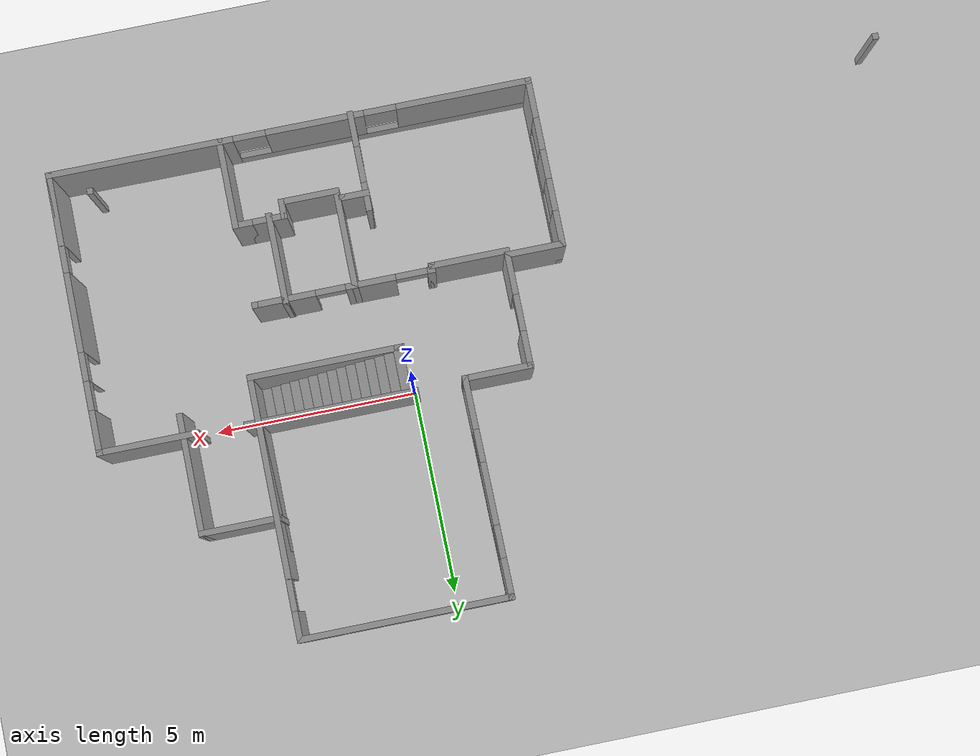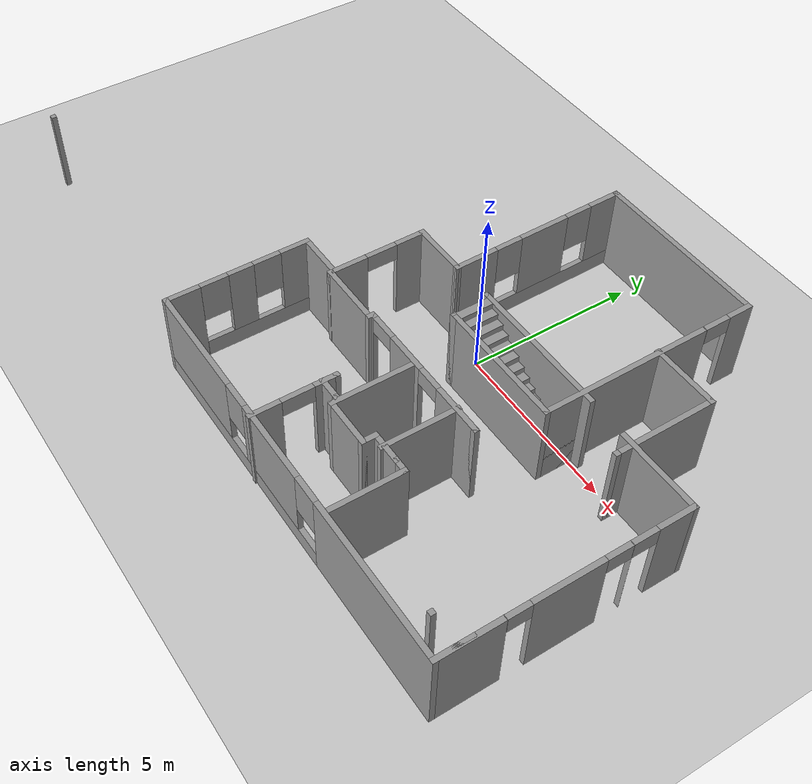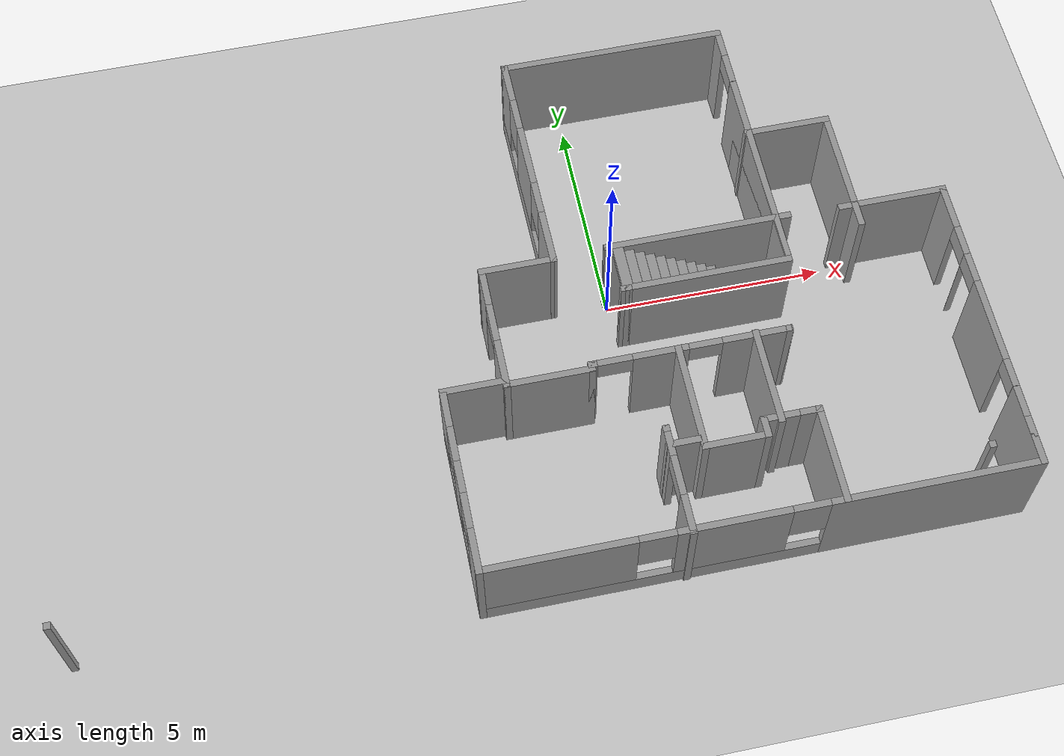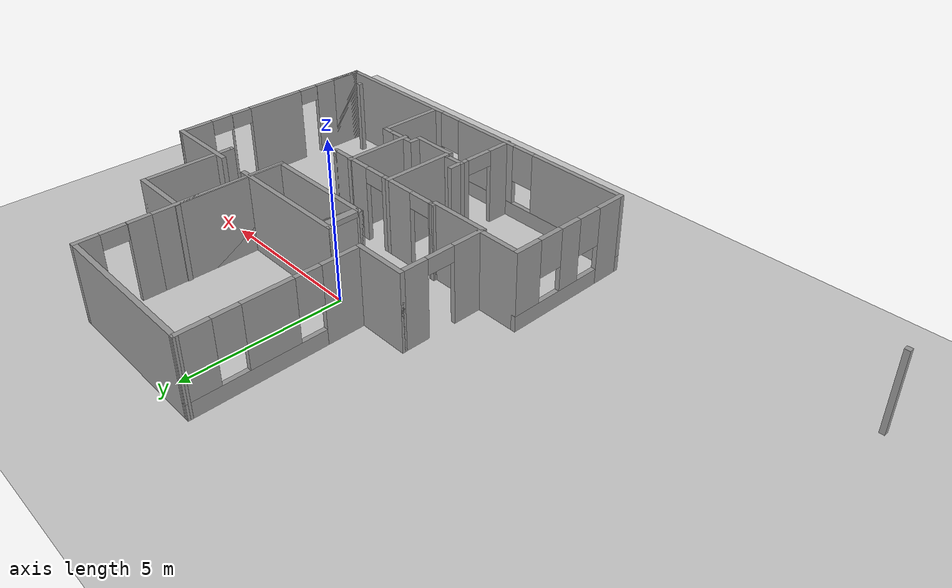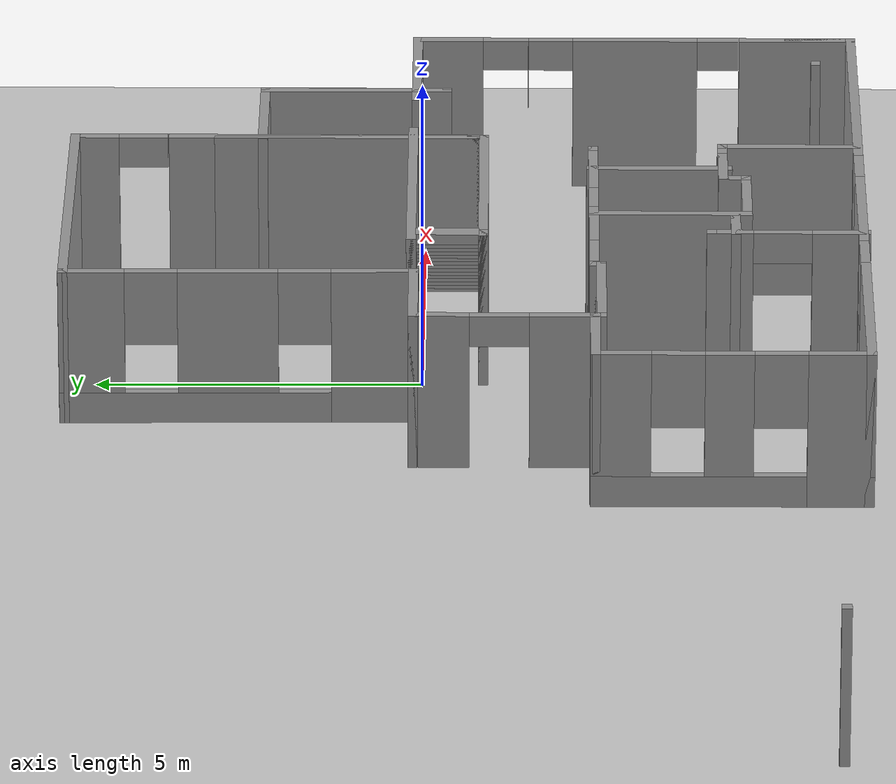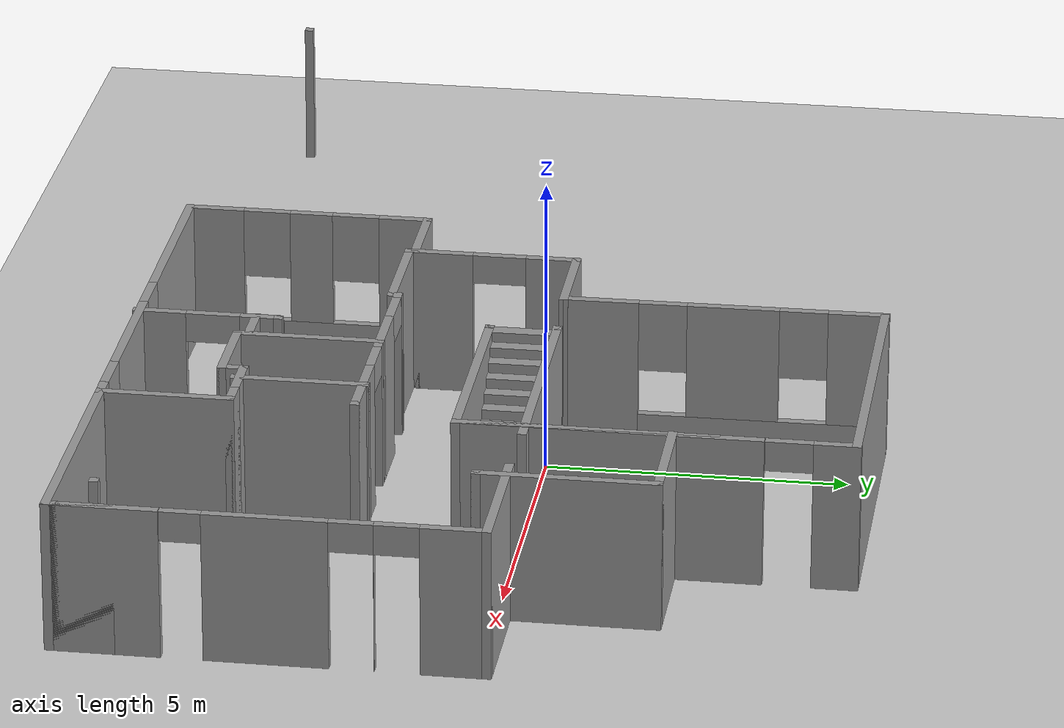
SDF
<sdf version="1.7">
 <world name="default">
  <light name="sun" type="directional">
   <pose>0 0 10 0 -0 0</pose>
   <diffuse>0.8 0.8 0.8 1</diffuse>
   <specular>0.2 0.2 0.2 1</specular>
   <attenuation>
    <range>1000</range>
    <constant>0.9</constant>
    <linear>0.01</linear>
    <quadratic>0.001</quadratic>
   </attenuation>
   <direction>-0.5 0.1 -0.9</direction>
   <spot><inner_angle>0</inner_angle><outer_angle>0</outer_angle><falloff>0</falloff></spot>
  </light>
  <model name="ground_plane">
   <static>1</static>
   <link name="link">
    <collision name="collision">
     <geometry><plane><normal>0 0 1</normal><size>100 100</size></plane></geometry>
     <surface>
      <contact><collide_bitmask>65535</collide_bitmask></contact>
      <friction><ode><mu>100</mu><mu2>50</mu2></ode></friction>
     </surface>
    </collision>
    <visual name="visual">
     <cast_shadows>0</cast_shadows>
     <geometry><plane><normal>0 0 1</normal><size>100 100</size></plane></geometry>
     <material>
      <script><uri>file://media/materials/scripts/gazebo.material</uri><name>Gazebo/Grey</name></script>
     </material>
    </visual>
   </link>
  </model>
  <gravity>0 0 -9.8</gravity>
  <magnetic_field>6e-06 2.3e-05 -4.2e-05</magnetic_field>
  <atmosphere type="adiabatic"/>
  <physics type="ode">
   <max_step_size>0.001</max_step_size>
   <real_time_factor>1</real_time_factor>
   <real_time_update_rate>1000</real_time_update_rate>
  </physics>
  <scene><ambient>0.4 0.4 0.4 1</ambient><background>0.7 0.7 0.7 1</background><shadows>1</shadows></scene>
  <spherical_coordinates>
   <surface_model>EARTH_WGS84</surface_model>
   <latitude_deg>0</latitude_deg>
   <longitude_deg>0</longitude_deg>
   <elevation>0</elevation>
   <heading_deg>0</heading_deg>
  </spherical_coordinates>
  <model name="Floorplan3">
   <pose>-2.52848 -0.65485 0 0 -0 0</pose>
   <link name="Stairs_0">
    <visual name="Stairs_0_Visual_0">
     <pose>6.12924 0.284508 0.083333 0 -0 -1.5708</pose>
     <geometry><box><size>0.964509 0.243192 0.166667</size></box></geometry>
     <material>
      <script><uri>file://media/materials/scripts/gazebo.material</uri><name>Gazebo/Grey</name></script>
      <ambient>1 1 1 1</ambient>
     </material>
     <meta><layer>0</layer></meta>
    </visual>
    <collision name="Stairs_0_Collision_0">
     <geometry><box><size>0.964509 0.243192 0.166667</size></box></geometry>
     <pose>6.12924 0.284508 0.083333 0 -0 -1.5708</pose>
    </collision>
    <visual name="Stairs_0_Visual_1">
     <pose>5.88604 0.284508 0.25 0 -0 -1.5708</pose>
     <geometry><box><size>0.964509 0.243192 0.166667</size></box></geometry>
     <material>
      <script><uri>file://media/materials/scripts/gazebo.material</uri><name>Gazebo/Grey</name></script>
      <ambient>1 1 1 1</ambient>
     </material>
     <meta><layer>0</layer></meta>
    </visual>
    <collision name="Stairs_0_Collision_1">
     <geometry><box><size>0.964509 0.243192 0.166667</size></box></geometry>
     <pose>5.88604 0.284508 0.25 0 -0 -1.5708</pose>
    </collision>
    <visual name="Stairs_0_Visual_2">
     <pose>5.64285 0.284508 0.416667 0 -0 -1.5708</pose>
     <geometry><box><size>0.964509 0.243192 0.166667</size></box></geometry>
     <material>
      <script><uri>file://media/materials/scripts/gazebo.material</uri><name>Gazebo/Grey</name></script>
      <ambient>1 1 1 1</ambient>
     </material>
     <meta><layer>0</layer></meta>
    </visual>
    <collision name="Stairs_0_Collision_2">
     <geometry><box><size>0.964509 0.243192 0.166667</size></box></geometry>
     <pose>5.64285 0.284508 0.416667 0 -0 -1.5708</pose>
    </collision>
    <visual name="Stairs_0_Visual_3">
     <pose>5.39966 0.284508 0.583333 0 -0 -1.5708</pose>
     <geometry><box><size>0.964509 0.243192 0.166667</size></box></geometry>
     <material>
      <script><uri>file://media/materials/scripts/gazebo.material</uri><name>Gazebo/Grey</name></script>
      <ambient>1 1 1 1</ambient>
     </material>
     <meta><layer>0</layer></meta>
    </visual>
    <collision name="Stairs_0_Collision_3">
     <geometry><box><size>0.964509 0.243192 0.166667</size></box></geometry>
     <pose>5.39966 0.284508 0.583333 0 -0 -1.5708</pose>
    </collision>
    <visual name="Stairs_0_Visual_4">
     <pose>5.15647 0.284508 0.75 0 -0 -1.5708</pose>
     <geometry><box><size>0.964509 0.243192 0.166667</size></box></geometry>
     <material>
      <script><uri>file://media/materials/scripts/gazebo.material</uri><name>Gazebo/Grey</name></script>
      <ambient>1 1 1 1</ambient>
     </material>
     <meta><layer>0</layer></meta>
    </visual>
    <collision name="Stairs_0_Collision_4">
     <geometry><box><size>0.964509 0.243192 0.166667</size></box></geometry>
     <pose>5.15647 0.284508 0.75 0 -0 -1.5708</pose>
    </collision>
    <visual name="Stairs_0_Visual_5">
     <pose>4.91327 0.284508 0.916667 0 -0 -1.5708</pose>
     <geometry><box><size>0.964509 0.243192 0.166667</size></box></geometry>
     <material>
      <script><uri>file://media/materials/scripts/gazebo.material</uri><name>Gazebo/Grey</name></script>
      <ambient>1 1 1 1</ambient>
     </material>
     <meta><layer>0</layer></meta>
    </visual>
    <collision name="Stairs_0_Collision_5">
     <geometry><box><size>0.964509 0.243192 0.166667</size></box></geometry>
     <pose>4.91327 0.284508 0.916667 0 -0 -1.5708</pose>
    </collision>
    <visual name="Stairs_0_Visual_6">
     <pose>4.67008 0.284508 1.08333 0 -0 -1.5708</pose>
     <geometry><box><size>0.964509 0.243192 0.166667</size></box></geometry>
     <material>
      <script><uri>file://media/materials/scripts/gazebo.material</uri><name>Gazebo/Grey</name></script>
      <ambient>1 1 1 1</ambient>
     </material>
     <meta><layer>0</layer></meta>
    </visual>
    <collision name="Stairs_0_Collision_6">
     <geometry><box><size>0.964509 0.243192 0.166667</size></box></geometry>
     <pose>4.67008 0.284508 1.08333 0 -0 -1.5708</pose>
    </collision>
    <visual name="Stairs_0_Visual_7">
     <pose>4.42689 0.284508 1.25 0 -0 -1.5708</pose>
     <geometry><box><size>0.964509 0.243192 0.166667</size></box></geometry>
     <material>
      <script><uri>file://media/materials/scripts/gazebo.material</uri><name>Gazebo/Grey</name></script>
      <ambient>1 1 1 1</ambient>
     </material>
     <meta><layer>0</layer></meta>
    </visual>
    <collision name="Stairs_0_Collision_7">
     <geometry><box><size>0.964509 0.243192 0.166667</size></box></geometry>
     <pose>4.42689 0.284508 1.25 0 -0 -1.5708</pose>
    </collision>
    <visual name="Stairs_0_Visual_8">
     <pose>4.1837 0.284508 1.41667 0 -0 -1.5708</pose>
     <geometry><box><size>0.964509 0.243192 0.166667</size></box></geometry>
     <material>
      <script><uri>file://media/materials/scripts/gazebo.material</uri><name>Gazebo/Grey</name></script>
      <ambient>1 1 1 1</ambient>
     </material>
     <meta><layer>0</layer></meta>
    </visual>
    <collision name="Stairs_0_Collision_8">
     <geometry><box><size>0.964509 0.243192 0.166667</size></box></geometry>
     <pose>4.1837 0.284508 1.41667 0 -0 -1.5708</pose>
    </collision>
    <visual name="Stairs_0_Visual_9">
     <pose>3.94051 0.284508 1.58333 0 -0 -1.5708</pose>
     <geometry><box><size>0.964509 0.243192 0.166667</size></box></geometry>
     <material>
      <script><uri>file://media/materials/scripts/gazebo.material</uri><name>Gazebo/Grey</name></script>
      <ambient>1 1 1 1</ambient>
     </material>
     <meta><layer>0</layer></meta>
    </visual>
    <collision name="Stairs_0_Collision_9">
     <geometry><box><size>0.964509 0.243192 0.166667</size></box></geometry>
     <pose>3.94051 0.284508 1.58333 0 -0 -1.5708</pose>
    </collision>
    <visual name="Stairs_0_Visual_10">
     <pose>3.69732 0.284508 1.75 0 -0 -1.5708</pose>
     <geometry><box><size>0.964509 0.243192 0.166667</size></box></geometry>
     <material>
      <script><uri>file://media/materials/scripts/gazebo.material</uri><name>Gazebo/Grey</name></script>
      <ambient>1 1 1 1</ambient>
     </material>
     <meta><layer>0</layer></meta>
    </visual>
    <collision name="Stairs_0_Collision_10">
     <geometry><box><size>0.964509 0.243192 0.166667</size></box></geometry>
     <pose>3.69732 0.284508 1.75 0 -0 -1.5708</pose>
    </collision>
    <visual name="Stairs_0_Visual_11">
     <pose>3.45412 0.284508 1.91667 0 -0 -1.5708</pose>
     <geometry><box><size>0.964509 0.243192 0.166667</size></box></geometry>
     <material>
      <script><uri>file://media/materials/scripts/gazebo.material</uri><name>Gazebo/Grey</name></script>
      <ambient>1 1 1 1</ambient>
     </material>
     <meta><layer>0</layer></meta>
    </visual>
    <collision name="Stairs_0_Collision_11">
     <geometry><box><size>0.964509 0.243192 0.166667</size></box></geometry>
     <pose>3.45412 0.284508 1.91667 0 -0 -1.5708</pose>
    </collision>
    <visual name="Stairs_0_Visual_12">
     <pose>3.21093 0.284508 2.08333 0 -0 -1.5708</pose>
     <geometry><box><size>0.964509 0.243192 0.166667</size></box></geometry>
     <material>
      <script><uri>file://media/materials/scripts/gazebo.material</uri><name>Gazebo/Grey</name></script>
      <ambient>1 1 1 1</ambient>
     </material>
     <meta><layer>0</layer></meta>
    </visual>
    <collision name="Stairs_0_Collision_12">
     <geometry><box><size>0.964509 0.243192 0.166667</size></box></geometry>
     <pose>3.21093 0.284508 2.08333 0 -0 -1.5708</pose>
    </collision>
    <visual name="Stairs_0_Visual_13">
     <pose>2.96774 0.284508 2.25 0 -0 -1.5708</pose>
     <geometry><box><size>0.964509 0.243192 0.166667</size></box></geometry>
     <material>
      <script><uri>file://media/materials/scripts/gazebo.material</uri><name>Gazebo/Grey</name></script>
      <ambient>1 1 1 1</ambient>
     </material>
     <meta><layer>0</layer></meta>
    </visual>
    <collision name="Stairs_0_Collision_13">
     <geometry><box><size>0.964509 0.243192 0.166667</size></box></geometry>
     <pose>2.96774 0.284508 2.25 0 -0 -1.5708</pose>
    </collision>
    <visual name="Stairs_0_Visual_14">
     <pose>2.72455 0.284508 2.41667 0 -0 -1.5708</pose>
     <geometry><box><size>0.964509 0.243192 0.166667</size></box></geometry>
     <material>
      <script><uri>file://media/materials/scripts/gazebo.material</uri><name>Gazebo/Grey</name></script>
      <ambient>1 1 1 1</ambient>
     </material>
     <meta><layer>0</layer></meta>
    </visual>
    <collision name="Stairs_0_Collision_14">
     <geometry><box><size>0.964509 0.243192 0.166667</size></box></geometry>
     <pose>2.72455 0.284508 2.41667 0 -0 -1.5708</pose>
    </collision>
   </link>
   <link name="Wall_0">
    <collision name="Wall_0_Collision">
     <geometry><box><size>5.25 0.15 2.5</size></box></geometry>
     <pose>0 0 1.25 0 -0 0</pose>
    </collision>
    <visual name="Wall_0_Visual">
     <pose>0 0 1.25 0 -0 0</pose>
     <geometry><box><size>5.25 0.15 2.5</size></box></geometry>
     <material>
      <script><uri>file://media/materials/scripts/gazebo.material</uri><name>Gazebo/Grey</name></script>
      <ambient>1 1 1 1</ambient>
     </material>
     <meta><layer>0</layer></meta>
    </visual>
    <pose>3.7815 6.08805 0 0 -0 0</pose>
   </link>
   <link name="Wall_1">
    <pose>6.3315 2.91305 0 0 -0 -1.5708</pose>
    <visual name="Wall_1_Visual_0">
     <pose>-2.87348 0 1.25 0 -0 0</pose>
     <geometry><box><size>0.753042 0.15 2.5</size></box></geometry>
     <material>
      <script><uri>file://media/materials/scripts/gazebo.material</uri><name>Gazebo/Grey</name></script>
      <ambient>1 1 1 1</ambient>
     </material>
     <meta><layer>0</layer></meta>
    </visual>
    <collision name="Wall_1_Collision_0">
     <geometry><box><size>0.753042 0.15 2.5</size></box></geometry>
     <pose>-2.87348 0 1.25 0 -0 0</pose>
    </collision>
    <visual name="Wall_1_Visual_1">
     <pose>0.764447 0 1.25 0 -0 0</pose>
     <geometry><box><size>4.9711 0.15 2.5</size></box></geometry>
     <material>
      <script><uri>file://media/materials/scripts/gazebo.material</uri><name>Gazebo/Grey</name></script>
      <ambient>1 1 1 1</ambient>
     </material>
     <meta><layer>0</layer></meta>
    </visual>
    <collision name="Wall_1_Collision_1">
     <geometry><box><size>4.9711 0.15 2.5</size></box></geometry>
     <pose>0.764447 0 1.25 0 -0 0</pose>
    </collision>
    <visual name="Wall_1_Visual_2">
     <pose>1.1182 0 1.25 0 -0 0</pose>
     <geometry><box><size>4.26359 0.15 2.5</size></box></geometry>
     <material>
      <script><uri>file://media/materials/scripts/gazebo.material</uri><name>Gazebo/Grey</name></script>
      <ambient>1 1 1 1</ambient>
     </material>
     <meta><layer>0</layer></meta>
    </visual>
    <collision name="Wall_1_Collision_2">
     <geometry><box><size>4.26359 0.15 2.5</size></box></geometry>
     <pose>1.1182 0 1.25 0 -0 0</pose>
    </collision>
    <visual name="Wall_1_Visual_3">
     <pose>-2.1148 0 2.25 0 -0 0</pose>
     <geometry><box><size>0.764314 0.15 0.5</size></box></geometry>
     <material>
      <script><uri>file://media/materials/scripts/gazebo.material</uri><name>Gazebo/Grey</name></script>
      <ambient>1 1 1 1</ambient>
     </material>
     <meta><layer>0</layer></meta>
    </visual>
    <collision name="Wall_1_Collision_3">
     <geometry><box><size>0.764314 0.15 0.5</size></box></geometry>
     <pose>-2.1148 0 2.25 0 -0 0</pose>
    </collision>
   </link>
   <link name="Wall_10">
    <pose>-1.66226 -4.00009 0 0 -0 1.5708</pose>
    <visual name="Wall_10_Visual_0">
     <pose>-1.61779 0 1.25 0 -0 0</pose>
     <geometry><box><size>1.01441 0.15 2.5</size></box></geometry>
     <material>
      <script><uri>file://media/materials/scripts/gazebo.material</uri><name>Gazebo/Grey</name></script>
      <ambient>1 1 1 1</ambient>
     </material>
     <meta><layer>0</layer></meta>
    </visual>
    <collision name="Wall_10_Collision_0">
     <geometry><box><size>1.01441 0.15 2.5</size></box></geometry>
     <pose>-1.61779 0 1.25 0 -0 0</pose>
    </collision>
    <visual name="Wall_10_Visual_1">
     <pose>0.507207 0 0.25 0 -0 0</pose>
     <geometry><box><size>3.23559 0.15 0.5</size></box></geometry>
     <material>
      <script><uri>file://media/materials/scripts/gazebo.material</uri><name>Gazebo/Grey</name></script>
      <ambient>1 1 1 1</ambient>
     </material>
     <meta><layer>0</layer></meta>
    </visual>
    <collision name="Wall_10_Collision_1">
     <geometry><box><size>3.23559 0.15 0.5</size></box></geometry>
     <pose>0.507207 0 0.25 0 -0 0</pose>
    </collision>
    <visual name="Wall_10_Visual_2">
     <pose>0.055609 0 1.5 0 -0 0</pose>
     <geometry><box><size>0.732389 0.15 2</size></box></geometry>
     <material>
      <script><uri>file://media/materials/scripts/gazebo.material</uri><name>Gazebo/Grey</name></script>
      <ambient>1 1 1 1</ambient>
     </material>
     <meta><layer>0</layer></meta>
    </visual>
    <collision name="Wall_10_Collision_2">
     <geometry><box><size>0.732389 0.15 2</size></box></geometry>
     <pose>0.055609 0 1.5 0 -0 0</pose>
    </collision>
    <visual name="Wall_10_Visual_3">
     <pose>1.6734 0 1.5 0 -0 0</pose>
     <geometry><box><size>0.903197 0.15 2</size></box></geometry>
     <material>
      <script><uri>file://media/materials/scripts/gazebo.material</uri><name>Gazebo/Grey</name></script>
      <ambient>1 1 1 1</ambient>
     </material>
     <meta><layer>0</layer></meta>
    </visual>
    <collision name="Wall_10_Collision_3">
     <geometry><box><size>0.903197 0.15 2</size></box></geometry>
     <pose>1.6734 0 1.5 0 -0 0</pose>
    </collision>
    <visual name="Wall_10_Visual_4">
     <pose>-0.710586 0 1.9 0 -0 0</pose>
     <geometry><box><size>0.8 0.15 1.2</size></box></geometry>
     <material>
      <script><uri>file://media/materials/scripts/gazebo.material</uri><name>Gazebo/Grey</name></script>
      <ambient>1 1 1 1</ambient>
     </material>
     <meta><layer>0</layer></meta>
    </visual>
    <collision name="Wall_10_Collision_4">
     <geometry><box><size>0.8 0.15 1.2</size></box></geometry>
     <pose>-0.710586 0 1.9 0 -0 0</pose>
    </collision>
    <visual name="Wall_10_Visual_5">
     <pose>0.821803 0 1.9 0 -0 0</pose>
     <geometry><box><size>0.8 0.15 1.2</size></box></geometry>
     <material>
      <script><uri>file://media/materials/scripts/gazebo.material</uri><name>Gazebo/Grey</name></script>
      <ambient>1 1 1 1</ambient>
     </material>
     <meta><layer>0</layer></meta>
    </visual>
    <collision name="Wall_10_Collision_5">
     <geometry><box><size>0.8 0.15 1.2</size></box></geometry>
     <pose>0.821803 0 1.9 0 -0 0</pose>
    </collision>
   </link>
   <link name="Wall_14">
    <collision name="Wall_14_Collision">
     <geometry><box><size>0.15 0.15 2.5</size></box></geometry>
     <pose>0 0 1.25 0 -0 0</pose>
    </collision>
    <visual name="Wall_14_Visual">
     <pose>0 0 1.25 0 -0 0</pose>
     <geometry><box><size>0.15 0.15 2.5</size></box></geometry>
     <material>
      <script><uri>file://media/materials/scripts/gazebo.material</uri><name>Gazebo/Grey</name></script>
      <ambient>1 1 1 1</ambient>
     </material>
     <meta><layer>0</layer></meta>
    </visual>
    <pose>-10.1877 -5.45057 0 0 -0 0</pose>
   </link>
   <link name="Wall_16">
    <collision name="Wall_16_Collision">
     <geometry><box><size>1.5 0.15 2.5</size></box></geometry>
     <pose>0 0 1.25 0 -0 0</pose>
    </collision>
    <visual name="Wall_16_Visual">
     <pose>0 0 1.25 0 -0 0</pose>
     <geometry><box><size>1.5 0.15 2.5</size></box></geometry>
     <material>
      <script><uri>file://media/materials/scripts/gazebo.material</uri><name>Gazebo/Grey</name></script>
      <ambient>1 1 1 1</ambient>
     </material>
     <meta><layer>0</layer></meta>
    </visual>
    <pose>-0.987263 -1.95009 0 0 -0 0</pose>
   </link>
   <link name="Wall_17">
    <collision name="Wall_17_Collision">
     <geometry><box><size>0.25 0.15 2.5</size></box></geometry>
     <pose>0 0 1.25 0 -0 0</pose>
    </collision>
    <visual name="Wall_17_Visual">
     <pose>0 0 1.25 0 -0 0</pose>
     <geometry><box><size>0.25 0.15 2.5</size></box></geometry>
     <material>
      <script><uri>file://media/materials/scripts/gazebo.material</uri><name>Gazebo/Grey</name></script>
      <ambient>1 1 1 1</ambient>
     </material>
     <meta><layer>0</layer></meta>
    </visual>
    <pose>-0.312263 -2.00009 0 0 -0 -1.5708</pose>
   </link>
   <link name="Wall_18">
    <collision name="Wall_18_Collision">
     <geometry><box><size>2 0.15 2.5</size></box></geometry>
     <pose>0 0 1.25 0 -0 0</pose>
    </collision>
    <visual name="Wall_18_Visual">
     <pose>0 0 1.25 0 -0 0</pose>
     <geometry><box><size>2 0.15 2.5</size></box></geometry>
     <material>
      <script><uri>file://media/materials/scripts/gazebo.material</uri><name>Gazebo/Grey</name></script>
      <ambient>1 1 1 1</ambient>
     </material>
     <meta><layer>0</layer></meta>
    </visual>
    <pose>0.612737 -2.05009 0 0 -0 0</pose>
   </link>
   <link name="Wall_2">
    <collision name="Wall_2_Collision">
     <geometry><box><size>3.75 0.15 2.5</size></box></geometry>
     <pose>0 0 1.25 0 -0 0</pose>
    </collision>
    <visual name="Wall_2_Visual">
     <pose>0 0 1.25 0 -0 0</pose>
     <geometry><box><size>3.75 0.15 2.5</size></box></geometry>
     <material>
      <script><uri>file://media/materials/scripts/gazebo.material</uri><name>Gazebo/Grey</name></script>
      <ambient>1 1 1 1</ambient>
     </material>
     <meta><layer>0</layer></meta>
    </visual>
    <pose>4.5315 -0.261945 0 0 -0 3.14159</pose>
   </link>
   <link name="Wall_21">
    <collision name="Wall_21_Collision">
     <geometry><box><size>0.15 0.15 2.5</size></box></geometry>
     <pose>0 0 1.25 0 -0 0</pose>
    </collision>
    <visual name="Wall_21_Visual">
     <pose>0 0 1.25 0 -0 0</pose>
     <geometry><box><size>0.15 0.15 2.5</size></box></geometry>
     <material>
      <script><uri>file://media/materials/scripts/gazebo.material</uri><name>Gazebo/Grey</name></script>
      <ambient>1 1 1 1</ambient>
     </material>
     <meta><layer>0</layer></meta>
    </visual>
    <pose>9.27504 -5.47769 0 0 -0 0</pose>
   </link>
   <link name="Wall_23">
    <collision name="Wall_23_Collision">
     <geometry><box><size>0.25 0.15 2.5</size></box></geometry>
     <pose>0 0 1.25 0 -0 0</pose>
    </collision>
    <visual name="Wall_23_Visual">
     <pose>0 0 1.25 0 -0 0</pose>
     <geometry><box><size>0.25 0.15 2.5</size></box></geometry>
     <material>
      <script><uri>file://media/materials/scripts/gazebo.material</uri><name>Gazebo/Grey</name></script>
      <ambient>1 1 1 1</ambient>
     </material>
     <meta><layer>0</layer></meta>
    </visual>
    <pose>1.53774 -2.00009 0 0 -0 1.5708</pose>
   </link>
   <link name="Wall_24">
    <pose>3.71274 -1.95009 0 0 -0 0</pose>
    <visual name="Wall_24_Visual_0">
     <pose>-2.15078 0 1.25 0 -0 0</pose>
     <geometry><box><size>0.198442 0.15 2.5</size></box></geometry>
     <material>
      <script><uri>file://media/materials/scripts/gazebo.material</uri><name>Gazebo/Grey</name></script>
      <ambient>1 1 1 1</ambient>
     </material>
     <meta><layer>0</layer></meta>
    </visual>
    <collision name="Wall_24_Collision_0">
     <geometry><box><size>0.198442 0.15 2.5</size></box></geometry>
     <pose>-2.15078 0 1.25 0 -0 0</pose>
    </collision>
    <visual name="Wall_24_Visual_1">
     <pose>-0.659966 0 1.25 0 -0 0</pose>
     <geometry><box><size>1.23289 0.15 2.5</size></box></geometry>
     <material>
      <script><uri>file://media/materials/scripts/gazebo.material</uri><name>Gazebo/Grey</name></script>
      <ambient>1 1 1 1</ambient>
     </material>
     <meta><layer>0</layer></meta>
    </visual>
    <collision name="Wall_24_Collision_1">
     <geometry><box><size>1.23289 0.15 2.5</size></box></geometry>
     <pose>-0.659966 0 1.25 0 -0 0</pose>
    </collision>
    <visual name="Wall_24_Visual_2">
     <pose>1.47001 0 1.25 0 -0 0</pose>
     <geometry><box><size>1.55999 0.15 2.5</size></box></geometry>
     <material>
      <script><uri>file://media/materials/scripts/gazebo.material</uri><name>Gazebo/Grey</name></script>
      <ambient>1 1 1 1</ambient>
     </material>
     <meta><layer>0</layer></meta>
    </visual>
    <collision name="Wall_24_Collision_2">
     <geometry><box><size>1.55999 0.15 2.5</size></box></geometry>
     <pose>1.47001 0 1.25 0 -0 0</pose>
    </collision>
    <visual name="Wall_24_Visual_3">
     <pose>-1.66398 0 2.25 0 -0 0</pose>
     <geometry><box><size>0.775148 0.15 0.5</size></box></geometry>
     <material>
      <script><uri>file://media/materials/scripts/gazebo.material</uri><name>Gazebo/Grey</name></script>
      <ambient>1 1 1 1</ambient>
     </material>
     <meta><layer>0</layer></meta>
    </visual>
    <collision name="Wall_24_Collision_3">
     <geometry><box><size>0.775148 0.15 0.5</size></box></geometry>
     <pose>-1.66398 0 2.25 0 -0 0</pose>
    </collision>
    <visual name="Wall_24_Visual_4">
     <pose>0.323244 0 2.25 0 -0 0</pose>
     <geometry><box><size>0.733531 0.15 0.5</size></box></geometry>
     <material>
      <script><uri>file://media/materials/scripts/gazebo.material</uri><name>Gazebo/Grey</name></script>
      <ambient>1 1 1 1</ambient>
     </material>
     <meta><layer>0</layer></meta>
    </visual>
    <collision name="Wall_24_Collision_4">
     <geometry><box><size>0.733531 0.15 0.5</size></box></geometry>
     <pose>0.323244 0 2.25 0 -0 0</pose>
    </collision>
   </link>
   <link name="Wall_25">
    <collision name="Wall_25_Collision">
     <geometry><box><size>0.15 0.15 2.5</size></box></geometry>
     <pose>0 0 1.25 0 -0 0</pose>
    </collision>
    <visual name="Wall_25_Visual">
     <pose>0 0 1.25 0 -0 0</pose>
     <geometry><box><size>0.15 0.15 2.5</size></box></geometry>
     <material>
      <script><uri>file://media/materials/scripts/gazebo.material</uri><name>Gazebo/Grey</name></script>
      <ambient>1 1 1 1</ambient>
     </material>
     <meta><layer>0</layer></meta>
    </visual>
    <pose>5.88774 -1.95009 0 0 -0 0</pose>
   </link>
   <link name="Wall_27">
    <collision name="Wall_27_Collision">
     <geometry><box><size>2.5 0.15 2.5</size></box></geometry>
     <pose>0 0 1.25 0 -0 0</pose>
    </collision>
    <visual name="Wall_27_Visual">
     <pose>0 0 1.25 0 -0 0</pose>
     <geometry><box><size>2.5 0.15 2.5</size></box></geometry>
     <material>
      <script><uri>file://media/materials/scripts/gazebo.material</uri><name>Gazebo/Grey</name></script>
      <ambient>1 1 1 1</ambient>
     </material>
     <meta><layer>0</layer></meta>
    </visual>
    <pose>3.43894 -3.12404 0 0 -0 -1.5708</pose>
   </link>
   <link name="Wall_28">
    <collision name="Wall_28_Collision">
     <geometry><box><size>1.5 0.15 2.5</size></box></geometry>
     <pose>0 0 1.25 0 -0 0</pose>
    </collision>
    <visual name="Wall_28_Visual">
     <pose>0 0 1.25 0 -0 0</pose>
     <geometry><box><size>1.5 0.15 2.5</size></box></geometry>
     <material>
      <script><uri>file://media/materials/scripts/gazebo.material</uri><name>Gazebo/Grey</name></script>
      <ambient>1 1 1 1</ambient>
     </material>
     <meta><layer>0</layer></meta>
    </visual>
    <pose>4.11394 -4.29903 0 0 -0 0</pose>
   </link>
   <link name="Wall_29">
    <collision name="Wall_29_Collision">
     <geometry><box><size>0.5 0.15 2.5</size></box></geometry>
     <pose>0 0 1.25 0 -0 0</pose>
    </collision>
    <visual name="Wall_29_Visual">
     <pose>0 0 1.25 0 -0 0</pose>
     <geometry><box><size>0.5 0.15 2.5</size></box></geometry>
     <material>
      <script><uri>file://media/materials/scripts/gazebo.material</uri><name>Gazebo/Grey</name></script>
      <ambient>1 1 1 1</ambient>
     </material>
     <meta><layer>0</layer></meta>
    </visual>
    <pose>4.78894 -4.12404 0 0 -0 1.5708</pose>
   </link>
   <link name="Wall_3">
    <collision name="Wall_3_Collision">
     <geometry><box><size>0.15 0.15 2.5</size></box></geometry>
     <pose>0 0 1.25 0 -0 0</pose>
    </collision>
    <visual name="Wall_3_Visual">
     <pose>0 0 1.25 0 -0 0</pose>
     <geometry><box><size>0.15 0.15 2.5</size></box></geometry>
     <material>
      <script><uri>file://media/materials/scripts/gazebo.material</uri><name>Gazebo/Grey</name></script>
      <ambient>1 1 1 1</ambient>
     </material>
     <meta><layer>0</layer></meta>
    </visual>
    <pose>2.7315 -0.261945 0 0 -0 0</pose>
   </link>
   <link name="Wall_30">
    <collision name="Wall_30_Collision">
     <geometry><box><size>1 0.15 2.5</size></box></geometry>
     <pose>0 0 1.25 0 -0 0</pose>
    </collision>
    <visual name="Wall_30_Visual">
     <pose>0 0 1.25 0 -0 0</pose>
     <geometry><box><size>1 0.15 2.5</size></box></geometry>
     <material>
      <script><uri>file://media/materials/scripts/gazebo.material</uri><name>Gazebo/Grey</name></script>
      <ambient>1 1 1 1</ambient>
     </material>
     <meta><layer>0</layer></meta>
    </visual>
    <pose>5.21394 -3.94903 0 0 -0 0</pose>
   </link>
   <link name="Wall_31">
    <collision name="Wall_31_Collision">
     <geometry><box><size>0.5 0.15 2.5</size></box></geometry>
     <pose>0 0 1.25 0 -0 0</pose>
    </collision>
    <visual name="Wall_31_Visual">
     <pose>0 0 1.25 0 -0 0</pose>
     <geometry><box><size>0.5 0.15 2.5</size></box></geometry>
     <material>
      <script><uri>file://media/materials/scripts/gazebo.material</uri><name>Gazebo/Grey</name></script>
      <ambient>1 1 1 1</ambient>
     </material>
     <meta><layer>0</layer></meta>
    </visual>
    <pose>5.81394 -3.94903 0 0 -0 0</pose>
   </link>
   <link name="Wall_32">
    <collision name="Wall_32_Collision">
     <geometry><box><size>2.25 0.15 2.5</size></box></geometry>
     <pose>0 0 1.25 0 -0 0</pose>
    </collision>
    <visual name="Wall_32_Visual">
     <pose>0 0 1.25 0 -0 0</pose>
     <geometry><box><size>2.25 0.15 2.5</size></box></geometry>
     <material>
      <script><uri>file://media/materials/scripts/gazebo.material</uri><name>Gazebo/Grey</name></script>
      <ambient>1 1 1 1</ambient>
     </material>
     <meta><layer>0</layer></meta>
    </visual>
    <pose>5.98894 -4.99904 0 0 -0 -1.5708</pose>
   </link>
   <link name="Wall_33">
    <collision name="Wall_33_Collision">
     <geometry><box><size>0.15 0.15 2.5</size></box></geometry>
     <pose>0 0 1.25 0 -0 0</pose>
    </collision>
    <visual name="Wall_33_Visual">
     <pose>0 0 1.25 0 -0 0</pose>
     <geometry><box><size>0.15 0.15 2.5</size></box></geometry>
     <material>
      <script><uri>file://media/materials/scripts/gazebo.material</uri><name>Gazebo/Grey</name></script>
      <ambient>1 1 1 1</ambient>
     </material>
     <meta><layer>0</layer></meta>
    </visual>
    <pose>5.98894 -6.04903 0 0 -0 0</pose>
   </link>
   <link name="Wall_35">
    <pose>2.74298 -4.91379 0 0 -0 1.5708</pose>
    <visual name="Wall_35_Visual_0">
     <pose>-0.804814 0 1.25 0 -0 0</pose>
     <geometry><box><size>0.890372 0.15 2.5</size></box></geometry>
     <material>
      <script><uri>file://media/materials/scripts/gazebo.material</uri><name>Gazebo/Grey</name></script>
      <ambient>1 1 1 1</ambient>
     </material>
     <meta><layer>0</layer></meta>
    </visual>
    <collision name="Wall_35_Collision_0">
     <geometry><box><size>0.890372 0.15 2.5</size></box></geometry>
     <pose>-0.804814 0 1.25 0 -0 0</pose>
    </collision>
    <visual name="Wall_35_Visual_1">
     <pose>0.895186 0 1.25 0 -0 0</pose>
     <geometry><box><size>0.709628 0.15 2.5</size></box></geometry>
     <material>
      <script><uri>file://media/materials/scripts/gazebo.material</uri><name>Gazebo/Grey</name></script>
      <ambient>1 1 1 1</ambient>
     </material>
     <meta><layer>0</layer></meta>
    </visual>
    <collision name="Wall_35_Collision_1">
     <geometry><box><size>0.709628 0.15 2.5</size></box></geometry>
     <pose>0.895186 0 1.25 0 -0 0</pose>
    </collision>
    <visual name="Wall_35_Visual_2">
     <pose>0.090372 0 2.25 0 -0 0</pose>
     <geometry><box><size>0.9 0.15 0.5</size></box></geometry>
     <material>
      <script><uri>file://media/materials/scripts/gazebo.material</uri><name>Gazebo/Grey</name></script>
      <ambient>1 1 1 1</ambient>
     </material>
     <meta><layer>0</layer></meta>
    </visual>
    <collision name="Wall_35_Collision_2">
     <geometry><box><size>0.9 0.15 0.5</size></box></geometry>
     <pose>0.090372 0 2.25 0 -0 0</pose>
    </collision>
   </link>
   <link name="Wall_36">
    <collision name="Wall_36_Collision">
     <geometry><box><size>0.15 0.15 2.5</size></box></geometry>
     <pose>0 0 1.25 0 -0 0</pose>
    </collision>
    <visual name="Wall_36_Visual">
     <pose>0 0 1.25 0 -0 0</pose>
     <geometry><box><size>0.15 0.15 2.5</size></box></geometry>
     <material>
      <script><uri>file://media/materials/scripts/gazebo.material</uri><name>Gazebo/Grey</name></script>
      <ambient>1 1 1 1</ambient>
     </material>
     <meta><layer>0</layer></meta>
    </visual>
    <pose>2.74298 -3.73879 0 0 -0 0</pose>
   </link>
   <link name="Wall_38">
    <collision name="Wall_38_Collision">
     <geometry><box><size>0.15 0.15 2.5</size></box></geometry>
     <pose>0 0 1.25 0 -0 0</pose>
    </collision>
    <visual name="Wall_38_Visual">
     <pose>0 0 1.25 0 -0 0</pose>
     <geometry><box><size>0.15 0.15 2.5</size></box></geometry>
     <material>
      <script><uri>file://media/materials/scripts/gazebo.material</uri><name>Gazebo/Grey</name></script>
      <ambient>1 1 1 1</ambient>
     </material>
     <meta><layer>0</layer></meta>
    </visual>
    <pose>2.74298 -3.73879 0 0 -0 0</pose>
   </link>
   <link name="Wall_4">
    <collision name="Wall_4_Collision">
     <geometry><box><size>0.25 0.15 2.5</size></box></geometry>
     <pose>0 0 1.25 0 -0 0</pose>
    </collision>
    <visual name="Wall_4_Visual">
     <pose>0 0 1.25 0 -0 0</pose>
     <geometry><box><size>0.25 0.15 2.5</size></box></geometry>
     <material>
      <script><uri>file://media/materials/scripts/gazebo.material</uri><name>Gazebo/Grey</name></script>
      <ambient>1 1 1 1</ambient>
     </material>
     <meta><layer>0</layer></meta>
    </visual>
    <pose>2.6815 -0.261945 0 0 -0 3.14159</pose>
   </link>
   <link name="Wall_40">
    <collision name="Wall_40_Collision">
     <geometry><box><size>0.15 0.15 2.5</size></box></geometry>
     <pose>0 0 1.25 0 -0 0</pose>
    </collision>
    <visual name="Wall_40_Visual">
     <pose>0 0 1.25 0 -0 0</pose>
     <geometry><box><size>0.15 0.15 2.5</size></box></geometry>
     <material>
      <script><uri>file://media/materials/scripts/gazebo.material</uri><name>Gazebo/Grey</name></script>
      <ambient>1 1 1 1</ambient>
     </material>
     <meta><layer>0</layer></meta>
    </visual>
    <pose>2.74298 -3.73879 0 0 -0 0</pose>
   </link>
   <link name="Wall_41">
    <collision name="Wall_41_Collision">
     <geometry><box><size>0.15 0.15 2.5</size></box></geometry>
     <pose>0 0 1.25 0 -0 0</pose>
    </collision>
    <visual name="Wall_41_Visual">
     <pose>0 0 1.25 0 -0 0</pose>
     <geometry><box><size>0.15 0.15 2.5</size></box></geometry>
     <material>
      <script><uri>file://media/materials/scripts/gazebo.material</uri><name>Gazebo/Grey</name></script>
      <ambient>1 1 1 1</ambient>
     </material>
     <meta><layer>0</layer></meta>
    </visual>
    <pose>2.74298 -3.73879 0 0 -0 0</pose>
   </link>
   <link name="Wall_43">
    <collision name="Wall_43_Collision">
     <geometry><box><size>0.75 0.15 2.5</size></box></geometry>
     <pose>0 0 1.25 0 -0 0</pose>
    </collision>
    <visual name="Wall_43_Visual">
     <pose>0 0 1.25 0 -0 0</pose>
     <geometry><box><size>0.75 0.15 2.5</size></box></geometry>
     <material>
      <script><uri>file://media/materials/scripts/gazebo.material</uri><name>Gazebo/Grey</name></script>
      <ambient>1 1 1 1</ambient>
     </material>
     <meta><layer>0</layer></meta>
    </visual>
    <pose>3.03135 -4.11152 0 0 -0 0</pose>
   </link>
   <link name="Wall_44">
    <collision name="Wall_44_Collision">
     <geometry><box><size>0.15 0.15 2.5</size></box></geometry>
     <pose>0 0 1.25 0 -0 0</pose>
    </collision>
    <visual name="Wall_44_Visual">
     <pose>0 0 1.25 0 -0 0</pose>
     <geometry><box><size>0.15 0.15 2.5</size></box></geometry>
     <material>
      <script><uri>file://media/materials/scripts/gazebo.material</uri><name>Gazebo/Grey</name></script>
      <ambient>1 1 1 1</ambient>
     </material>
     <meta><layer>0</layer></meta>
    </visual>
    <pose>3.33135 -4.11152 0 0 -0 0</pose>
   </link>
   <link name="Wall_46">
    <collision name="Wall_46_Collision">
     <geometry><box><size>2.25 0.15 2.5</size></box></geometry>
     <pose>0 0 1.25 0 -0 0</pose>
    </collision>
    <visual name="Wall_46_Visual">
     <pose>0 0 1.25 0 -0 0</pose>
     <geometry><box><size>2.25 0.15 2.5</size></box></geometry>
     <material>
      <script><uri>file://media/materials/scripts/gazebo.material</uri><name>Gazebo/Grey</name></script>
      <ambient>1 1 1 1</ambient>
     </material>
     <meta><layer>0</layer></meta>
    </visual>
    <pose>5.1506 -2.96847 0 0 -0 1.5708</pose>
   </link>
   <link name="Wall_47">
    <collision name="Wall_47_Collision">
     <geometry><box><size>0.15 0.15 2.5</size></box></geometry>
     <pose>0 0 1.25 0 -0 0</pose>
    </collision>
    <visual name="Wall_47_Visual">
     <pose>0 0 1.25 0 -0 0</pose>
     <geometry><box><size>0.15 0.15 2.5</size></box></geometry>
     <material>
      <script><uri>file://media/materials/scripts/gazebo.material</uri><name>Gazebo/Grey</name></script>
      <ambient>1 1 1 1</ambient>
     </material>
     <meta><layer>0</layer></meta>
    </visual>
    <pose>5.1506 -1.91847 0 0 -0 0</pose>
   </link>
   <link name="Wall_49">
    <pose>-0.312263 -0.65009 0 0 -0 1.5708</pose>
    <visual name="Wall_49_Visual_0">
     <pose>-0.845464 0 1.25 0 -0 0</pose>
     <geometry><box><size>1.05907 0.15 2.5</size></box></geometry>
     <material>
      <script><uri>file://media/materials/scripts/gazebo.material</uri><name>Gazebo/Grey</name></script>
      <ambient>1 1 1 1</ambient>
     </material>
     <meta><layer>0</layer></meta>
    </visual>
    <collision name="Wall_49_Collision_0">
     <geometry><box><size>1.05907 0.15 2.5</size></box></geometry>
     <pose>-0.845464 0 1.25 0 -0 0</pose>
    </collision>
    <visual name="Wall_49_Visual_1">
     <pose>0.979536 0 1.25 0 -0 0</pose>
     <geometry><box><size>0.790929 0.15 2.5</size></box></geometry>
     <material>
      <script><uri>file://media/materials/scripts/gazebo.material</uri><name>Gazebo/Grey</name></script>
      <ambient>1 1 1 1</ambient>
     </material>
     <meta><layer>0</layer></meta>
    </visual>
    <collision name="Wall_49_Collision_1">
     <geometry><box><size>0.790929 0.15 2.5</size></box></geometry>
     <pose>0.979536 0 1.25 0 -0 0</pose>
    </collision>
    <visual name="Wall_49_Visual_2">
     <pose>0.134071 0 2.25 0 -0 0</pose>
     <geometry><box><size>0.9 0.15 0.5</size></box></geometry>
     <material>
      <script><uri>file://media/materials/scripts/gazebo.material</uri><name>Gazebo/Grey</name></script>
      <ambient>1 1 1 1</ambient>
     </material>
     <meta><layer>0</layer></meta>
    </visual>
    <collision name="Wall_49_Collision_2">
     <geometry><box><size>0.9 0.15 0.5</size></box></geometry>
     <pose>0.134071 0 2.25 0 -0 0</pose>
    </collision>
   </link>
   <link name="Wall_5">
    <collision name="Wall_5_Collision">
     <geometry><box><size>0.25 0.15 2.5</size></box></geometry>
     <pose>0 0 1.25 0 -0 0</pose>
    </collision>
    <visual name="Wall_5_Visual">
     <pose>0 0 1.25 0 -0 0</pose>
     <geometry><box><size>0.25 0.15 2.5</size></box></geometry>
     <material>
      <script><uri>file://media/materials/scripts/gazebo.material</uri><name>Gazebo/Grey</name></script>
      <ambient>1 1 1 1</ambient>
     </material>
     <meta><layer>0</layer></meta>
    </visual>
    <pose>2.6815 -0.261945 0 0 -0 0</pose>
   </link>
   <link name="Wall_51">
    <pose>1.25748 3.43541 0 0 -0 1.58059</pose>
    <visual name="Wall_51_Visual_0">
     <pose>-2.06615 0 1.25 0 -0 0</pose>
     <geometry><box><size>1.32326 0.15 2.5</size></box></geometry>
     <material>
      <script><uri>file://media/materials/scripts/gazebo.material</uri><name>Gazebo/Grey</name></script>
      <ambient>1 1 1 1</ambient>
     </material>
     <meta><layer>0</layer></meta>
    </visual>
    <collision name="Wall_51_Collision_0">
     <geometry><box><size>1.32326 0.15 2.5</size></box></geometry>
     <pose>-2.06615 0 1.25 0 -0 0</pose>
    </collision>
    <visual name="Wall_51_Visual_1">
     <pose>0.661629 0 0.25 0 -0 0</pose>
     <geometry><box><size>4.1323 0.15 0.5</size></box></geometry>
     <material>
      <script><uri>file://media/materials/scripts/gazebo.material</uri><name>Gazebo/Grey</name></script>
      <ambient>1 1 1 1</ambient>
     </material>
     <meta><layer>0</layer></meta>
    </visual>
    <collision name="Wall_51_Collision_1">
     <geometry><box><size>4.1323 0.15 0.5</size></box></geometry>
     <pose>0.661629 0 0.25 0 -0 0</pose>
    </collision>
    <visual name="Wall_51_Visual_2">
     <pose>0.158532 0 1.5 0 -0 0</pose>
     <geometry><box><size>1.5261 0.15 2</size></box></geometry>
     <material>
      <script><uri>file://media/materials/scripts/gazebo.material</uri><name>Gazebo/Grey</name></script>
      <ambient>1 1 1 1</ambient>
     </material>
     <meta><layer>0</layer></meta>
    </visual>
    <collision name="Wall_51_Collision_2">
     <geometry><box><size>1.5261 0.15 2</size></box></geometry>
     <pose>0.158532 0 1.5 0 -0 0</pose>
    </collision>
    <visual name="Wall_51_Visual_3">
     <pose>2.22468 0 1.5 0 -0 0</pose>
     <geometry><box><size>1.00619 0.15 2</size></box></geometry>
     <material>
      <script><uri>file://media/materials/scripts/gazebo.material</uri><name>Gazebo/Grey</name></script>
      <ambient>1 1 1 1</ambient>
     </material>
     <meta><layer>0</layer></meta>
    </visual>
    <collision name="Wall_51_Collision_3">
     <geometry><box><size>1.00619 0.15 2</size></box></geometry>
     <pose>2.22468 0 1.5 0 -0 0</pose>
    </collision>
    <visual name="Wall_51_Visual_4">
     <pose>-1.00452 0 1.9 0 -0 0</pose>
     <geometry><box><size>0.8 0.15 1.2</size></box></geometry>
     <material>
      <script><uri>file://media/materials/scripts/gazebo.material</uri><name>Gazebo/Grey</name></script>
      <ambient>1 1 1 1</ambient>
     </material>
     <meta><layer>0</layer></meta>
    </visual>
    <collision name="Wall_51_Collision_4">
     <geometry><box><size>0.8 0.15 1.2</size></box></geometry>
     <pose>-1.00452 0 1.9 0 -0 0</pose>
    </collision>
    <visual name="Wall_51_Visual_5">
     <pose>1.32158 0 1.9 0 -0 0</pose>
     <geometry><box><size>0.8 0.15 1.2</size></box></geometry>
     <material>
      <script><uri>file://media/materials/scripts/gazebo.material</uri><name>Gazebo/Grey</name></script>
      <ambient>1 1 1 1</ambient>
     </material>
     <meta><layer>0</layer></meta>
    </visual>
    <collision name="Wall_51_Collision_5">
     <geometry><box><size>0.8 0.15 1.2</size></box></geometry>
     <pose>1.32158 0 1.9 0 -0 0</pose>
    </collision>
   </link>
   <link name="Wall_52">
    <collision name="Wall_52_Collision">
     <geometry><box><size>0.15 0.15 2.5</size></box></geometry>
     <pose>0 0 1.25 0 -0 0</pose>
    </collision>
    <visual name="Wall_52_Visual">
     <pose>0 0 1.25 0 -0 0</pose>
     <geometry><box><size>0.15 0.15 2.5</size></box></geometry>
     <material>
      <script><uri>file://media/materials/scripts/gazebo.material</uri><name>Gazebo/Grey</name></script>
      <ambient>1 1 1 1</ambient>
     </material>
     <meta><layer>0</layer></meta>
    </visual>
    <pose>1.2315 6.08805 0 0 -0 0</pose>
   </link>
   <link name="Wall_54">
    <collision name="Wall_54_Collision">
     <geometry><box><size>2 0.15 2.5</size></box></geometry>
     <pose>0 0 1.25 0 -0 0</pose>
    </collision>
    <visual name="Wall_54_Visual">
     <pose>0 0 1.25 0 -0 0</pose>
     <geometry><box><size>2 0.15 2.5</size></box></geometry>
     <material>
      <script><uri>file://media/materials/scripts/gazebo.material</uri><name>Gazebo/Grey</name></script>
      <ambient>1 1 1 1</ambient>
     </material>
     <meta><layer>0</layer></meta>
    </visual>
    <pose>7.2263 3.17536 0 0 -0 0</pose>
   </link>
   <link name="Wall_55">
    <collision name="Wall_55_Collision">
     <geometry><box><size>3 0.15 2.5</size></box></geometry>
     <pose>0 0 1.25 0 -0 0</pose>
    </collision>
    <visual name="Wall_55_Visual">
     <pose>0 0 1.25 0 -0 0</pose>
     <geometry><box><size>3 0.15 2.5</size></box></geometry>
     <material>
      <script><uri>file://media/materials/scripts/gazebo.material</uri><name>Gazebo/Grey</name></script>
      <ambient>1 1 1 1</ambient>
     </material>
     <meta><layer>0</layer></meta>
    </visual>
    <pose>8.1513 1.75036 0 0 -0 -1.5708</pose>
   </link>
   <link name="Wall_56">
    <collision name="Wall_56_Collision">
     <geometry><box><size>0.15 0.15 2.5</size></box></geometry>
     <pose>0 0 1.25 0 -0 0</pose>
    </collision>
    <visual name="Wall_56_Visual">
     <pose>0 0 1.25 0 -0 0</pose>
     <geometry><box><size>0.15 0.15 2.5</size></box></geometry>
     <material>
      <script><uri>file://media/materials/scripts/gazebo.material</uri><name>Gazebo/Grey</name></script>
      <ambient>1 1 1 1</ambient>
     </material>
     <meta><layer>0</layer></meta>
    </visual>
    <pose>8.1513 0.325365 0 0 -0 0</pose>
   </link>
   <link name="Wall_58">
    <collision name="Wall_58_Collision">
     <geometry><box><size>4.25 0.15 2.5</size></box></geometry>
     <pose>0 0 1.25 0 -0 0</pose>
    </collision>
    <visual name="Wall_58_Visual">
     <pose>0 0 1.25 0 -0 0</pose>
     <geometry><box><size>4.25 0.15 2.5</size></box></geometry>
     <material>
      <script><uri>file://media/materials/scripts/gazebo.material</uri><name>Gazebo/Grey</name></script>
      <ambient>1 1 1 1</ambient>
     </material>
     <meta><layer>0</layer></meta>
    </visual>
    <pose>4.55585 0.836545 0 0 -0 3.14159</pose>
   </link>
   <link name="Wall_59">
    <collision name="Wall_59_Collision">
     <geometry><box><size>0.15 0.15 2.5</size></box></geometry>
     <pose>0 0 1.25 0 -0 0</pose>
    </collision>
    <visual name="Wall_59_Visual">
     <pose>0 0 1.25 0 -0 0</pose>
     <geometry><box><size>0.15 0.15 2.5</size></box></geometry>
     <material>
      <script><uri>file://media/materials/scripts/gazebo.material</uri><name>Gazebo/Grey</name></script>
      <ambient>1 1 1 1</ambient>
     </material>
     <meta><layer>0</layer></meta>
    </visual>
    <pose>2.50585 0.836545 0 0 -0 0</pose>
   </link>
   <link name="Wall_61">
    <collision name="Wall_61_Collision">
     <geometry><box><size>1.75 0.15 2.5</size></box></geometry>
     <pose>0 0 1.25 0 -0 0</pose>
    </collision>
    <visual name="Wall_61_Visual">
     <pose>0 0 1.25 0 -0 0</pose>
     <geometry><box><size>1.75 0.15 2.5</size></box></geometry>
     <material>
      <script><uri>file://media/materials/scripts/gazebo.material</uri><name>Gazebo/Grey</name></script>
      <ambient>1 1 1 1</ambient>
     </material>
     <meta><layer>0</layer></meta>
    </visual>
    <pose>0.483474 0.782757 0 0 -0 3.14159</pose>
   </link>
   <link name="Wall_62">
    <collision name="Wall_62_Collision">
     <geometry><box><size>0.15 0.15 2.5</size></box></geometry>
     <pose>0 0 1.25 0 -0 0</pose>
    </collision>
    <visual name="Wall_62_Visual">
     <pose>0 0 1.25 0 -0 0</pose>
     <geometry><box><size>0.15 0.15 2.5</size></box></geometry>
     <material>
      <script><uri>file://media/materials/scripts/gazebo.material</uri><name>Gazebo/Grey</name></script>
      <ambient>1 1 1 1</ambient>
     </material>
     <meta><layer>0</layer></meta>
    </visual>
    <pose>-0.316526 0.782757 0 0 -0 0</pose>
   </link>
   <link name="Wall_7">
    <collision name="Wall_7_Collision">
     <geometry><box><size>2.5 0.15 2.5</size></box></geometry>
     <pose>0 0 1.25 0 -0 0</pose>
    </collision>
    <visual name="Wall_7_Visual">
     <pose>0 0 1.25 0 -0 0</pose>
     <geometry><box><size>2.5 0.15 2.5</size></box></geometry>
     <material>
      <script><uri>file://media/materials/scripts/gazebo.material</uri><name>Gazebo/Grey</name></script>
      <ambient>1 1 1 1</ambient>
     </material>
     <meta><layer>0</layer></meta>
    </visual>
    <pose>9.01274 0.79991 0 0 -0 0</pose>
   </link>
   <link name="Wall_8">
    <pose>10.1877 -2.62509 0 0 -0 -1.5708</pose>
    <visual name="Wall_8_Visual_0">
     <pose>-2.9463 0 1.25 0 -0 0</pose>
     <geometry><box><size>1.1074 0.15 2.5</size></box></geometry>
     <material>
      <script><uri>file://media/materials/scripts/gazebo.material</uri><name>Gazebo/Grey</name></script>
      <ambient>1 1 1 1</ambient>
     </material>
     <meta><layer>0</layer></meta>
    </visual>
    <collision name="Wall_8_Collision_0">
     <geometry><box><size>1.1074 0.15 2.5</size></box></geometry>
     <pose>-2.9463 0 1.25 0 -0 0</pose>
    </collision>
    <visual name="Wall_8_Visual_1">
     <pose>-1.67822 0 1.25 0 -0 0</pose>
     <geometry><box><size>0.003328 0.15 2.5</size></box></geometry>
     <material>
      <script><uri>file://media/materials/scripts/gazebo.material</uri><name>Gazebo/Grey</name></script>
      <ambient>1 1 1 1</ambient>
     </material>
     <meta><layer>0</layer></meta>
    </visual>
    <collision name="Wall_8_Collision_1">
     <geometry><box><size>0.003328 0.15 2.5</size></box></geometry>
     <pose>-1.67822 0 1.25 0 -0 0</pose>
    </collision>
    <visual name="Wall_8_Visual_2">
     <pose>0.012652 0 1.25 0 -0 0</pose>
     <geometry><box><size>1.97007 0.15 2.5</size></box></geometry>
     <material>
      <script><uri>file://media/materials/scripts/gazebo.material</uri><name>Gazebo/Grey</name></script>
      <ambient>1 1 1 1</ambient>
     </material>
     <meta><layer>0</layer></meta>
    </visual>
    <collision name="Wall_8_Collision_2">
     <geometry><box><size>1.97007 0.15 2.5</size></box></geometry>
     <pose>0.012652 0 1.25 0 -0 0</pose>
    </collision>
    <visual name="Wall_8_Visual_3">
     <pose>2.58189 0 1.25 0 -0 0</pose>
     <geometry><box><size>1.83621 0.15 2.5</size></box></geometry>
     <material>
      <script><uri>file://media/materials/scripts/gazebo.material</uri><name>Gazebo/Grey</name></script>
      <ambient>1 1 1 1</ambient>
     </material>
     <meta><layer>0</layer></meta>
    </visual>
    <collision name="Wall_8_Collision_3">
     <geometry><box><size>1.83621 0.15 2.5</size></box></geometry>
     <pose>2.58189 0 1.25 0 -0 0</pose>
    </collision>
    <visual name="Wall_8_Visual_4">
     <pose>2.94174 0 1.25 0 -0 0</pose>
     <geometry><box><size>1.11652 0.15 2.5</size></box></geometry>
     <material>
      <script><uri>file://media/materials/scripts/gazebo.material</uri><name>Gazebo/Grey</name></script>
      <ambient>1 1 1 1</ambient>
     </material>
     <meta><layer>0</layer></meta>
    </visual>
    <collision name="Wall_8_Collision_4">
     <geometry><box><size>1.11652 0.15 2.5</size></box></geometry>
     <pose>2.94174 0 1.25 0 -0 0</pose>
    </collision>
    <visual name="Wall_8_Visual_5">
     <pose>-2.03624 0 2.25 0 -0 0</pose>
     <geometry><box><size>0.712722 0.15 0.5</size></box></geometry>
     <material>
      <script><uri>file://media/materials/scripts/gazebo.material</uri><name>Gazebo/Grey</name></script>
      <ambient>1 1 1 1</ambient>
     </material>
     <meta><layer>0</layer></meta>
    </visual>
    <collision name="Wall_8_Collision_5">
     <geometry><box><size>0.712722 0.15 0.5</size></box></geometry>
     <pose>-2.03624 0 2.25 0 -0 0</pose>
    </collision>
    <visual name="Wall_8_Visual_6">
     <pose>-1.32447 0 2.25 0 -0 0</pose>
     <geometry><box><size>0.704166 0.15 0.5</size></box></geometry>
     <material>
      <script><uri>file://media/materials/scripts/gazebo.material</uri><name>Gazebo/Grey</name></script>
      <ambient>1 1 1 1</ambient>
     </material>
     <meta><layer>0</layer></meta>
    </visual>
    <collision name="Wall_8_Collision_6">
     <geometry><box><size>0.704166 0.15 0.5</size></box></geometry>
     <pose>-1.32447 0 2.25 0 -0 0</pose>
    </collision>
    <visual name="Wall_8_Visual_7">
     <pose>1.32605 0 2.25 0 -0 0</pose>
     <geometry><box><size>0.65672 0.15 0.5</size></box></geometry>
     <material>
      <script><uri>file://media/materials/scripts/gazebo.material</uri><name>Gazebo/Grey</name></script>
      <ambient>1 1 1 1</ambient>
     </material>
     <meta><layer>0</layer></meta>
    </visual>
    <collision name="Wall_8_Collision_7">
     <geometry><box><size>0.65672 0.15 0.5</size></box></geometry>
     <pose>1.32605 0 2.25 0 -0 0</pose>
    </collision>
   </link>
   <link name="Wall_9">
    <pose>4.26274 -6.05009 0 0 -0 3.14159</pose>
    <visual name="Wall_9_Visual_0">
     <pose>-3.69373 0 1.25 0 -0 0</pose>
     <geometry><box><size>4.61254 0.15 2.5</size></box></geometry>
     <material>
      <script><uri>file://media/materials/scripts/gazebo.material</uri><name>Gazebo/Grey</name></script>
      <ambient>1 1 1 1</ambient>
     </material>
     <meta><layer>0</layer></meta>
    </visual>
    <collision name="Wall_9_Collision_0">
     <geometry><box><size>4.61254 0.15 2.5</size></box></geometry>
     <pose>-3.69373 0 1.25 0 -0 0</pose>
    </collision>
    <visual name="Wall_9_Visual_1">
     <pose>2.30627 0 0.25 0 -0 0</pose>
     <geometry><box><size>7.38746 0.15 0.5</size></box></geometry>
     <material>
      <script><uri>file://media/materials/scripts/gazebo.material</uri><name>Gazebo/Grey</name></script>
      <ambient>1 1 1 1</ambient>
     </material>
     <meta><layer>0</layer></meta>
    </visual>
    <collision name="Wall_9_Collision_1">
     <geometry><box><size>7.38746 0.15 0.5</size></box></geometry>
     <pose>2.30627 0 0.25 0 -0 0</pose>
    </collision>
    <visual name="Wall_9_Visual_2">
     <pose>0.627024 0 1.5 0 -0 0</pose>
     <geometry><box><size>2.42896 0.15 2</size></box></geometry>
     <material>
      <script><uri>file://media/materials/scripts/gazebo.material</uri><name>Gazebo/Grey</name></script>
      <ambient>1 1 1 1</ambient>
     </material>
     <meta><layer>0</layer></meta>
    </visual>
    <collision name="Wall_9_Collision_2">
     <geometry><box><size>2.42896 0.15 2</size></box></geometry>
     <pose>0.627024 0 1.5 0 -0 0</pose>
    </collision>
    <visual name="Wall_9_Visual_3">
     <pose>4.32075 0 1.5 0 -0 0</pose>
     <geometry><box><size>3.3585 0.15 2</size></box></geometry>
     <material>
      <script><uri>file://media/materials/scripts/gazebo.material</uri><name>Gazebo/Grey</name></script>
      <ambient>1 1 1 1</ambient>
     </material>
     <meta><layer>0</layer></meta>
    </visual>
    <collision name="Wall_9_Collision_3">
     <geometry><box><size>3.3585 0.15 2</size></box></geometry>
     <pose>4.32075 0 1.5 0 -0 0</pose>
    </collision>
    <visual name="Wall_9_Visual_4">
     <pose>-0.987457 0 1.9 0 -0 0</pose>
     <geometry><box><size>0.8 0.15 1.2</size></box></geometry>
     <material>
      <script><uri>file://media/materials/scripts/gazebo.material</uri><name>Gazebo/Grey</name></script>
      <ambient>1 1 1 1</ambient>
     </material>
     <meta><layer>0</layer></meta>
    </visual>
    <collision name="Wall_9_Collision_4">
     <geometry><box><size>0.8 0.15 1.2</size></box></geometry>
     <pose>-0.987457 0 1.9 0 -0 0</pose>
    </collision>
    <visual name="Wall_9_Visual_5">
     <pose>2.24151 0 1.9 0 -0 0</pose>
     <geometry><box><size>0.8 0.15 1.2</size></box></geometry>
     <material>
      <script><uri>file://media/materials/scripts/gazebo.material</uri><name>Gazebo/Grey</name></script>
      <ambient>1 1 1 1</ambient>
     </material>
     <meta><layer>0</layer></meta>
    </visual>
    <collision name="Wall_9_Collision_5">
     <geometry><box><size>0.8 0.15 1.2</size></box></geometry>
     <pose>2.24151 0 1.9 0 -0 0</pose>
    </collision>
   </link>
   <static>1</static>
  </model>
 </world>
</sdf>
